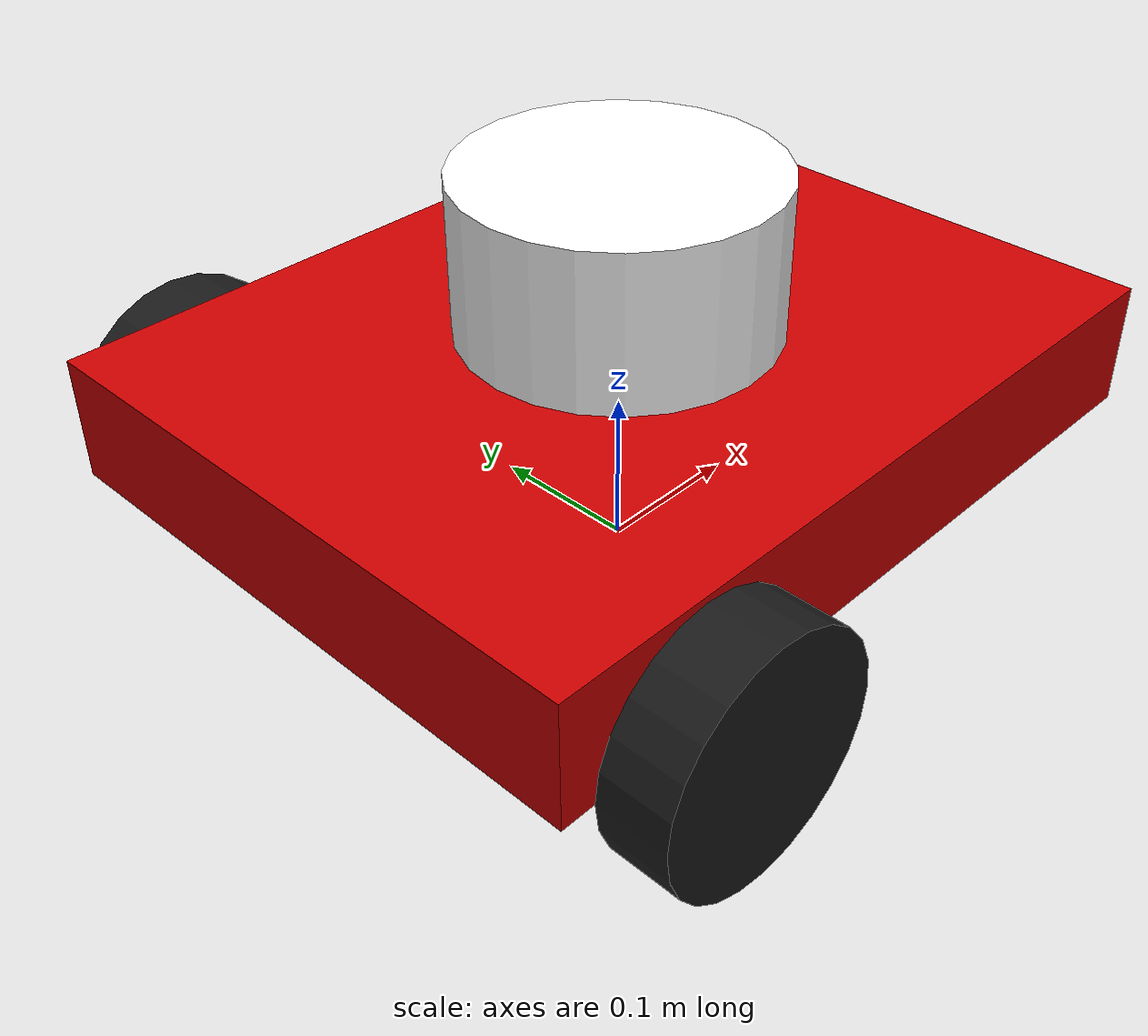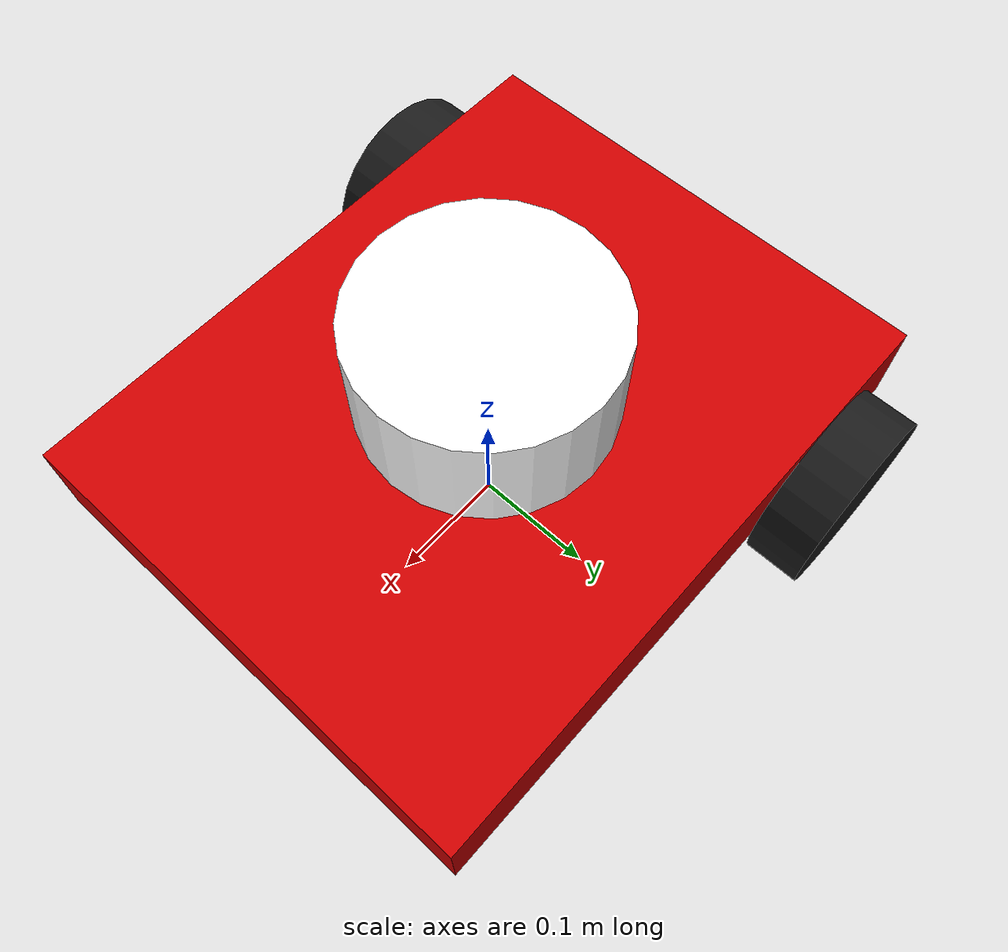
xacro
<?xml version="1.0"?>
<robot name="differential_drive_robot" xmlns:xacro="http://www.ros.org/wiki/xacro" >

    <!-- pi constant -->
    <xacro:property name="pi" value="3.14159265" />
    <!-- body_dimension -->
    <xacro:property name="chassis_length" value="0.5"/>
    <xacro:property name="chassis_width" value="0.4"/>
    <xacro:property name="chassis_height" value="0.08"/>

    <!-- wheel and caster dimension -->
    <xacro:property name="wheel_radius" value="0.076"/>
    <xacro:property name="wheel_thickness" value="0.045"/>

    <xacro:property name="caster_wheel_radius" value="0.0405"/>
    <xacro:property name="caster_wheel_thickness" value="0.0000000000000000000000000"/>

    <xacro:property name="ground_center" value="${chassis_height/2+wheel_radius}"/>
    <xacro:property name="wheel_c_center_l" value="${2*wheel_radius}"/>
    <xacro:property name="caster_c_center" value="${2*wheel_radius}"/>
    <xacro:property name="wheel_c_center_w" value="${chassis_width/2+wheel_thickness/2}"/>

    <!-- mass and inertia  -->
    <xacro:property name="chassis_mass" value="6.0"/>
    <xacro:property name="wheel_mass" value="2.1"/>
    <xacro:property name="caster_wheel_mass" value="2.5"/>

    <xacro:property name="ix_body" value="${(1/12) * chassis_mass * (chassis_width*chassis_width+chassis_height*chassis_height)}" />
    <xacro:property name="iy_body" value="${(1/12) * chassis_mass * (chassis_length*chassis_length+chassis_width*chassis_width)}" />
    <xacro:property name="iz_body" value="${(1/12) * chassis_mass * (chassis_length*chassis_length+chassis_height*chassis_height)}" />

    <xacro:property name="iz_wheel" value="${0.5* wheel_mass * wheel_radius * wheel_radius}" />
    <xacro:property name="i_wheel" value="${(1.0/12.0) * wheel_mass * (3.0*wheel_radius * wheel_radius + wheel_thickness * wheel_thickness)}" />

    <xacro:property name="i_caster" value="${(2.0/5.0) * caster_wheel_mass * caster_wheel_radius * caster_wheel_radius }" />

    <xacro:property name="wheel_offset_z" value="0.01"/>
    <xacro:property name="wheel_offset_y" value="0.22225"/>
    <xacro:property name="wheel_offset_x" value="0.4"/>
    <xacro:property name="caster_wheel_offset_x" value="0.075"/>
    <xacro:property name="caster_wheel_offset_z" value="${wheel_offset_z - wheel_radius + caster_wheel_radius}"/>

    <material name="red">
        <color rgba="0.8 0.0 0.0 1.0"/>
    </material>
    <material name="black">
        <color rgba="0.1 0.1 0.1 1.0"/>
    </material>
    <material name="blue">
        <color rgba="0.0 0.0 0.8 1.0"/>
    </material>
    <material name="white">
        <color rgba="1.0 1.0 1.0 1.0"/>
    </material>

    <!-- Inertial macros -->
    <xacro:macro name="inertia_body">
        <inertial>
            <origin rpy="0 0 0" xyz="0 0 ${ground_center}"/>
            <mass value="${chassis_mass}" />
            <inertia ixx="${ix_body}" ixy="0.0" ixz="0.0" iyy="${iy_body}" iyz="0" izz="${iz_body}" />
        </inertial>
    </xacro:macro>

    <xacro:macro name="inertia_wheel">
        <inertial>
            <origin rpy="1.57 0 0" xyz="0 0 0"/>
            <mass value="${wheel_mass}" />
            <inertia ixx="${i_wheel}" ixy="0.0" ixz="0.0" iyy="${i_wheel}" iyz="0" izz="${i_wheel}" />
        </inertial>
    </xacro:macro>

    <xacro:macro name="inertia_caster">
        <inertial>
            <origin rpy="0 0 0" xyz="0 0 0"/>
            <mass value="${caster_wheel_mass}" />
            <inertia ixx="${i_caster}" ixy="0.0" ixz="0.0" iyy="${i_caster}" iyz="0" izz="${i_caster}" />
        </inertial>
    </xacro:macro>

    <!-- Include Gazebo plugin configuration -->
    <xacro:include filename="$(find mars)/model/robot.gazebo" />

    <!-- Links and joints -->
    <link name="base_footprint"></link>
    <joint name="base_link_joint" type="fixed">
        <parent link="base_footprint" />
        <child link="base_link" />
    </joint>

    <link name="base_link">
        <visual>
            <geometry>
                <box size="${chassis_length} ${chassis_width} ${chassis_height}" />
            </geometry>
            <origin rpy="0 0 0" xyz="0 0 ${ground_center}"/>
            <material name="red"/>
        </visual>
        <collision>
            <geometry>
                <box size="${chassis_length} ${chassis_width} ${chassis_height}" />
            </geometry>
            <origin rpy="0 0 0" xyz="0 0 ${ground_center}"/>
        </collision>
        <xacro:inertia_body />
    </link>

    <!-- left wheel -->
    <joint name="wheel1_joint" type="continuous" >
        <parent link="base_link"/>
        <child link="wheel1_link" />
        <origin xyz="${-wheel_c_center_l} ${wheel_c_center_w} ${wheel_radius}" rpy="0 0 0" />
        <axis xyz="0 1 0"/>
        <limit effort="50000" velocity="10"/>
        <dynamics damping="1.0" friction="1.0"/>
    </joint>

    <link name="wheel1_link">
        <visual>
            <origin rpy="1.57 0 0" xyz="0 0 0"/>
            <geometry>
                <cylinder length="${wheel_thickness}" radius="${wheel_radius}"/>
            </geometry>
            <material name="black"/>
        </visual>
        <collision>
            <origin rpy="1.57 0 0" xyz="0 0 0"/>
            <geometry>
                <cylinder length="${wheel_thickness}" radius="${wheel_radius}"/>
            </geometry>
        </collision>
        <xacro:inertia_wheel/>
    </link>

    <!-- right wheel -->
    <joint name="wheel2_joint" type="continuous" >
        <parent link="base_link"/>
        <child link="wheel2_link" />
        <origin xyz="${-wheel_c_center_l} ${-wheel_c_center_w} ${wheel_radius}" rpy="0 0 0" />
        <axis xyz="0 1 0"/>
        <limit effort="50000" velocity="10"/>
        <dynamics damping="1.0" friction="1.0"/>
    </joint>

    <link name="wheel2_link">
        <visual>
            <origin rpy="1.57 0 0" xyz="0 0 0"/>
            <geometry>
                <cylinder length="${wheel_thickness}" radius="${wheel_radius}"/>
            </geometry>
            <material name="black"/>
        </visual>
        <collision>
            <origin rpy="1.57 0 0" xyz="0 0 0"/>
            <geometry>
                <cylinder length="${wheel_thickness}" radius="${wheel_radius}"/>
            </geometry>
        </collision>
        <xacro:inertia_wheel/>
    </link>

    <!-- Caster wheel -->
    <joint name="caster_joint" type="fixed">
        <parent link="base_link"/>
        <child link="caster_link"/>
        <origin xyz="${caster_c_center} 0 ${wheel_radius}" rpy="0 0 0"/>
    </joint>

    <link name="caster_link">
        <visual>
            <origin rpy="0 0 0" xyz="0 0 0"/>
            <geometry>
                <sphere radius="${wheel_radius}" />
            </geometry>
            <material name="blue"/>
        </visual>
        <collision>
            <origin rpy="0 0 0" xyz="0 0 0"/>
            <geometry>
                <sphere radius="${wheel_radius}" />
            </geometry>
        </collision>
        <xacro:inertia_caster />
    </link>

    <!-- Lidar -->
    <joint name="lidar_joint" type="fixed">
        <origin xyz="0.0 0 ${chassis_height + wheel_radius}" rpy="0 0 0"/>
        <parent link="base_link"/>
        <child link="lidar_link"/>
        <axis xyz="0 1 0" rpy="0 0 0"/>
    </joint>

    <link name="lidar_link">
        <visual>
            <origin xyz="0 0 0.05" rpy="0 0 0"/>
            <geometry>
                <cylinder length="0.1" radius="0.1"/>
            </geometry>
            <material name="white"/>
        </visual>
        <collision name="collision">
            <origin xyz="0 0 0.05" rpy="0 0 0"/>
            <geometry>
                <cylinder length="0.1" radius="0.1"/>
            </geometry>
        </collision>
        <inertial>
            <mass value="1e-6"/>
            <origin xyz="0 0 0" rpy="0 0 0"/>
            <inertia ixx="1e-6" ixy="0" ixz="0" iyy="1e-6" iyz="0" izz="1e-6"/>
        </inertial>
    </link>

</robot>
